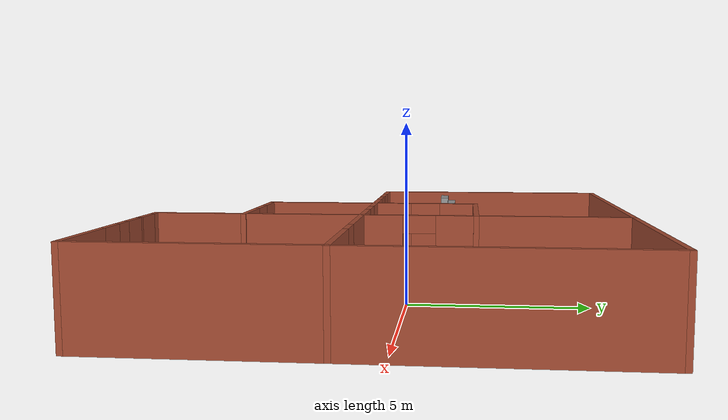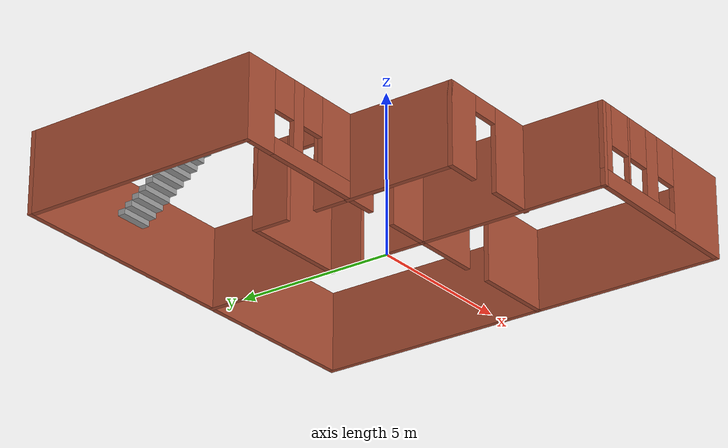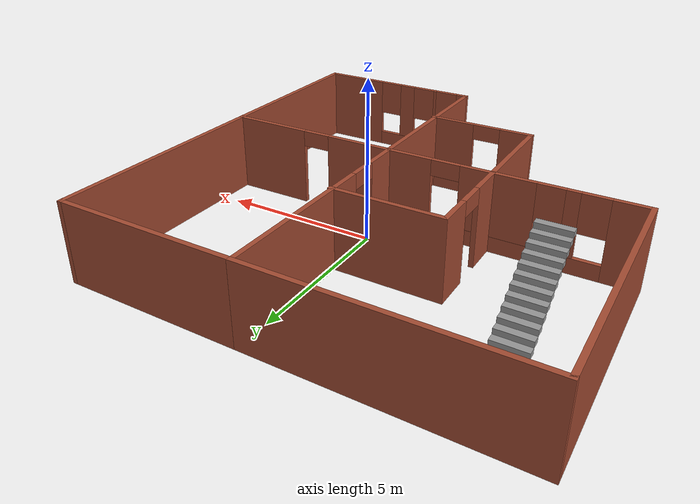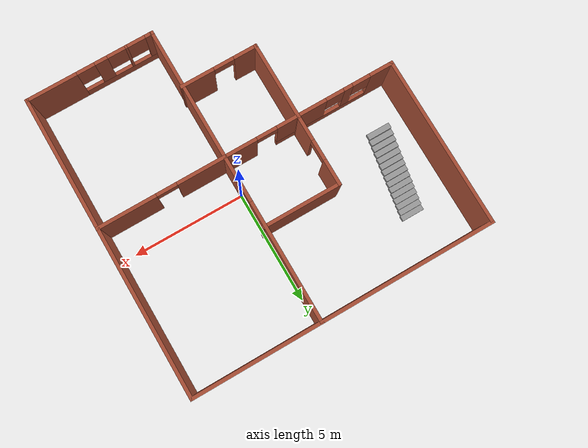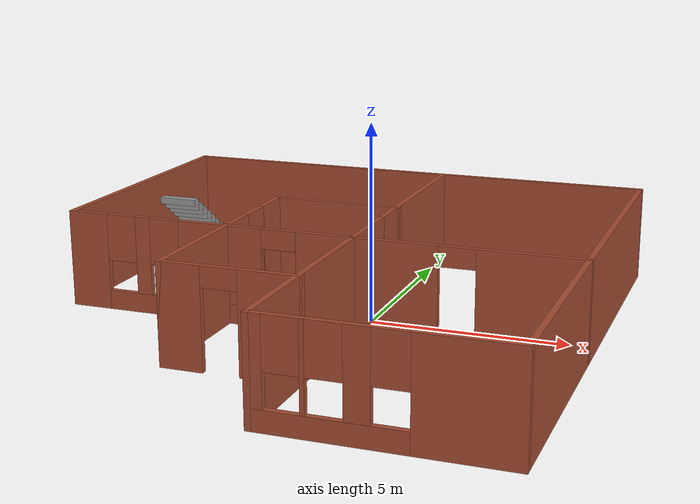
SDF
<?xml version='1.0'?>
<sdf version='1.6'>
  <model name='HouseOneLevel'>
    <pose frame=''>-1.02701 -0.481837 0 0 -0 0</pose>
    <link name='Stairs_1'>
      <visual name='Stairs_1_Visual_0'>
        <pose frame=''>-4.70333 4.64814 0.083333 0 -0 0</pose>
        <geometry>
          <box>
            <size>1 0.233333 0.166667</size>
          </box>
        </geometry>
        <material>
          <script>
            <uri>file://media/materials/scripts/gazebo.material</uri>
            <name>Gazebo/Grey</name>
          </script>
          <ambient>1 1 1 1</ambient>
        </material>
      </visual>
      <collision name='Stairs_1_Collision_0'>
        <geometry>
          <box>
            <size>1 0.233333 0.166667</size>
          </box>
        </geometry>
        <pose frame=''>-4.70333 4.64814 0.083333 0 -0 0</pose>
      </collision>
      <visual name='Stairs_1_Visual_1'>
        <pose frame=''>-4.70333 4.41481 0.25 0 -0 0</pose>
        <geometry>
          <box>
            <size>1 0.233333 0.166667</size>
          </box>
        </geometry>
        <material>
          <script>
            <uri>file://media/materials/scripts/gazebo.material</uri>
            <name>Gazebo/Grey</name>
          </script>
          <ambient>1 1 1 1</ambient>
        </material>
      </visual>
      <collision name='Stairs_1_Collision_1'>
        <geometry>
          <box>
            <size>1 0.233333 0.166667</size>
          </box>
        </geometry>
        <pose frame=''>-4.70333 4.41481 0.25 0 -0 0</pose>
      </collision>
      <visual name='Stairs_1_Visual_2'>
        <pose frame=''>-4.70333 4.18147 0.416667 0 -0 0</pose>
        <geometry>
          <box>
            <size>1 0.233333 0.166667</size>
          </box>
        </geometry>
        <material>
          <script>
            <uri>file://media/materials/scripts/gazebo.material</uri>
            <name>Gazebo/Grey</name>
          </script>
          <ambient>1 1 1 1</ambient>
        </material>
      </visual>
      <collision name='Stairs_1_Collision_2'>
        <geometry>
          <box>
            <size>1 0.233333 0.166667</size>
          </box>
        </geometry>
        <pose frame=''>-4.70333 4.18147 0.416667 0 -0 0</pose>
      </collision>
      <visual name='Stairs_1_Visual_3'>
        <pose frame=''>-4.70333 3.94814 0.583333 0 -0 0</pose>
        <geometry>
          <box>
            <size>1 0.233333 0.166667</size>
          </box>
        </geometry>
        <material>
          <script>
            <uri>file://media/materials/scripts/gazebo.material</uri>
            <name>Gazebo/Grey</name>
          </script>
          <ambient>1 1 1 1</ambient>
        </material>
      </visual>
      <collision name='Stairs_1_Collision_3'>
        <geometry>
          <box>
            <size>1 0.233333 0.166667</size>
          </box>
        </geometry>
        <pose frame=''>-4.70333 3.94814 0.583333 0 -0 0</pose>
      </collision>
      <visual name='Stairs_1_Visual_4'>
        <pose frame=''>-4.70333 3.71481 0.75 0 -0 0</pose>
        <geometry>
          <box>
            <size>1 0.233333 0.166667</size>
          </box>
        </geometry>
        <material>
          <script>
            <uri>file://media/materials/scripts/gazebo.material</uri>
            <name>Gazebo/Grey</name>
          </script>
          <ambient>1 1 1 1</ambient>
        </material>
      </visual>
      <collision name='Stairs_1_Collision_4'>
        <geometry>
          <box>
            <size>1 0.233333 0.166667</size>
          </box>
        </geometry>
        <pose frame=''>-4.70333 3.71481 0.75 0 -0 0</pose>
      </collision>
      <visual name='Stairs_1_Visual_5'>
        <pose frame=''>-4.70333 3.48148 0.916667 0 -0 0</pose>
        <geometry>
          <box>
            <size>1 0.233333 0.166667</size>
          </box>
        </geometry>
        <material>
          <script>
            <uri>file://media/materials/scripts/gazebo.material</uri>
            <name>Gazebo/Grey</name>
          </script>
          <ambient>1 1 1 1</ambient>
        </material>
      </visual>
      <collision name='Stairs_1_Collision_5'>
        <geometry>
          <box>
            <size>1 0.233333 0.166667</size>
          </box>
        </geometry>
        <pose frame=''>-4.70333 3.48148 0.916667 0 -0 0</pose>
      </collision>
      <visual name='Stairs_1_Visual_6'>
        <pose frame=''>-4.70333 3.24814 1.08333 0 -0 0</pose>
        <geometry>
          <box>
            <size>1 0.233333 0.166667</size>
          </box>
        </geometry>
        <material>
          <script>
            <uri>file://media/materials/scripts/gazebo.material</uri>
            <name>Gazebo/Grey</name>
          </script>
          <ambient>1 1 1 1</ambient>
        </material>
      </visual>
      <collision name='Stairs_1_Collision_6'>
        <geometry>
          <box>
            <size>1 0.233333 0.166667</size>
          </box>
        </geometry>
        <pose frame=''>-4.70333 3.24814 1.08333 0 -0 0</pose>
      </collision>
      <visual name='Stairs_1_Visual_7'>
        <pose frame=''>-4.70333 3.01481 1.25 0 -0 0</pose>
        <geometry>
          <box>
            <size>1 0.233333 0.166667</size>
          </box>
        </geometry>
        <material>
          <script>
            <uri>file://media/materials/scripts/gazebo.material</uri>
            <name>Gazebo/Grey</name>
          </script>
          <ambient>1 1 1 1</ambient>
        </material>
      </visual>
      <collision name='Stairs_1_Collision_7'>
        <geometry>
          <box>
            <size>1 0.233333 0.166667</size>
          </box>
        </geometry>
        <pose frame=''>-4.70333 3.01481 1.25 0 -0 0</pose>
      </collision>
      <visual name='Stairs_1_Visual_8'>
        <pose frame=''>-4.70333 2.78147 1.41667 0 -0 0</pose>
        <geometry>
          <box>
            <size>1 0.233333 0.166667</size>
          </box>
        </geometry>
        <material>
          <script>
            <uri>file://media/materials/scripts/gazebo.material</uri>
            <name>Gazebo/Grey</name>
          </script>
          <ambient>1 1 1 1</ambient>
        </material>
      </visual>
      <collision name='Stairs_1_Collision_8'>
        <geometry>
          <box>
            <size>1 0.233333 0.166667</size>
          </box>
        </geometry>
        <pose frame=''>-4.70333 2.78147 1.41667 0 -0 0</pose>
      </collision>
      <visual name='Stairs_1_Visual_9'>
        <pose frame=''>-4.70333 2.54814 1.58333 0 -0 0</pose>
        <geometry>
          <box>
            <size>1 0.233333 0.166667</size>
          </box>
        </geometry>
        <material>
          <script>
            <uri>file://media/materials/scripts/gazebo.material</uri>
            <name>Gazebo/Grey</name>
          </script>
          <ambient>1 1 1 1</ambient>
        </material>
      </visual>
      <collision name='Stairs_1_Collision_9'>
        <geometry>
          <box>
            <size>1 0.233333 0.166667</size>
          </box>
        </geometry>
        <pose frame=''>-4.70333 2.54814 1.58333 0 -0 0</pose>
      </collision>
      <visual name='Stairs_1_Visual_10'>
        <pose frame=''>-4.70333 2.31481 1.75 0 -0 0</pose>
        <geometry>
          <box>
            <size>1 0.233333 0.166667</size>
          </box>
        </geometry>
        <material>
          <script>
            <uri>file://media/materials/scripts/gazebo.material</uri>
            <name>Gazebo/Grey</name>
          </script>
          <ambient>1 1 1 1</ambient>
        </material>
      </visual>
      <collision name='Stairs_1_Collision_10'>
        <geometry>
          <box>
            <size>1 0.233333 0.166667</size>
          </box>
        </geometry>
        <pose frame=''>-4.70333 2.31481 1.75 0 -0 0</pose>
      </collision>
      <visual name='Stairs_1_Visual_11'>
        <pose frame=''>-4.70333 2.08148 1.91667 0 -0 0</pose>
        <geometry>
          <box>
            <size>1 0.233333 0.166667</size>
          </box>
        </geometry>
        <material>
          <script>
            <uri>file://media/materials/scripts/gazebo.material</uri>
            <name>Gazebo/Grey</name>
          </script>
          <ambient>1 1 1 1</ambient>
        </material>
      </visual>
      <collision name='Stairs_1_Collision_11'>
        <geometry>
          <box>
            <size>1 0.233333 0.166667</size>
          </box>
        </geometry>
        <pose frame=''>-4.70333 2.08148 1.91667 0 -0 0</pose>
      </collision>
      <visual name='Stairs_1_Visual_12'>
        <pose frame=''>-4.70333 1.84814 2.08333 0 -0 0</pose>
        <geometry>
          <box>
            <size>1 0.233333 0.166667</size>
          </box>
        </geometry>
        <material>
          <script>
            <uri>file://media/materials/scripts/gazebo.material</uri>
            <name>Gazebo/Grey</name>
          </script>
          <ambient>1 1 1 1</ambient>
        </material>
      </visual>
      <collision name='Stairs_1_Collision_12'>
        <geometry>
          <box>
            <size>1 0.233333 0.166667</size>
          </box>
        </geometry>
        <pose frame=''>-4.70333 1.84814 2.08333 0 -0 0</pose>
      </collision>
      <visual name='Stairs_1_Visual_13'>
        <pose frame=''>-4.70333 1.61481 2.25 0 -0 0</pose>
        <geometry>
          <box>
            <size>1 0.233333 0.166667</size>
          </box>
        </geometry>
        <material>
          <script>
            <uri>file://media/materials/scripts/gazebo.material</uri>
            <name>Gazebo/Grey</name>
          </script>
          <ambient>1 1 1 1</ambient>
        </material>
      </visual>
      <collision name='Stairs_1_Collision_13'>
        <geometry>
          <box>
            <size>1 0.233333 0.166667</size>
          </box>
        </geometry>
        <pose frame=''>-4.70333 1.61481 2.25 0 -0 0</pose>
      </collision>
      <visual name='Stairs_1_Visual_14'>
        <pose frame=''>-4.70333 1.38148 2.41667 0 -0 0</pose>
        <geometry>
          <box>
            <size>1 0.233333 0.166667</size>
          </box>
        </geometry>
        <material>
          <script>
            <uri>file://media/materials/scripts/gazebo.material</uri>
            <name>Gazebo/Grey</name>
          </script>
          <ambient>1 1 1 1</ambient>
        </material>
      </visual>
      <collision name='Stairs_1_Collision_14'>
        <geometry>
          <box>
            <size>1 0.233333 0.166667</size>
          </box>
        </geometry>
        <pose frame=''>-4.70333 1.38148 2.41667 0 -0 0</pose>
      </collision>
    </link>
    <link name='Wall_10'>
      <pose frame=''>1.00001 2.92484 0 0 -0 1.5708</pose>
      <visual name='Wall_10_Visual_0'>
        <pose frame=''>-3.14226 0 1.25 0 -0 0</pose>
        <geometry>
          <box>
            <size>1.21548 0.15 2.5</size>
          </box>
        </geometry>
        <material>
          <script>
            <uri>file://media/materials/scripts/gazebo.material</uri>
            <name>Gazebo/Bricks</name>
          </script>
          <ambient>1 1 1 1</ambient>
        </material>
      </visual>
      <collision name='Wall_10_Collision_0'>
        <geometry>
          <box>
            <size>1.21548 0.15 2.5</size>
          </box>
        </geometry>
        <pose frame=''>-3.14226 0 1.25 0 -0 0</pose>
      </collision>
      <visual name='Wall_10_Visual_1'>
        <pose frame=''>1.05774 0 1.25 0 -0 0</pose>
        <geometry>
          <box>
            <size>5.38452 0.15 2.5</size>
          </box>
        </geometry>
        <material>
          <script>
            <uri>file://media/materials/scripts/gazebo.material</uri>
            <name>Gazebo/Bricks</name>
          </script>
          <ambient>1 1 1 1</ambient>
        </material>
      </visual>
      <collision name='Wall_10_Collision_1'>
        <geometry>
          <box>
            <size>5.38452 0.15 2.5</size>
          </box>
        </geometry>
        <pose frame=''>1.05774 0 1.25 0 -0 0</pose>
      </collision>
      <visual name='Wall_10_Visual_2'>
        <pose frame=''>-2.08452 0 2.25 0 -0 0</pose>
        <geometry>
          <box>
            <size>0.9 0.15 0.5</size>
          </box>
        </geometry>
        <material>
          <script>
            <uri>file://media/materials/scripts/gazebo.material</uri>
            <name>Gazebo/Bricks</name>
          </script>
          <ambient>1 1 1 1</ambient>
        </material>
      </visual>
      <collision name='Wall_10_Collision_2'>
        <geometry>
          <box>
            <size>0.9 0.15 0.5</size>
          </box>
        </geometry>
        <pose frame=''>-2.08452 0 2.25 0 -0 0</pose>
      </collision>
    </link>
    <link name='Wall_2'>
      <collision name='Wall_2_Collision'>
        <geometry>
          <box>
            <size>7.75 0.15 2.5</size>
          </box>
        </geometry>
        <pose frame=''>0 0 1.25 0 -0 0</pose>
      </collision>
      <visual name='Wall_2_Visual'>
        <pose frame=''>0 0 1.25 0 -0 0</pose>
        <geometry>
          <box>
            <size>7.75 0.15 2.5</size>
          </box>
        </geometry>
        <material>
          <script>
            <uri>file://media/materials/scripts/gazebo.material</uri>
            <name>Gazebo/Bricks</name>
          </script>
          <ambient>1 1 1 1</ambient>
        </material>
      </visual>
      <pose frame=''>-2.79999 6.59984 0 0 -0 0</pose>
    </link>
    <link name='Wall_20'>
      <collision name='Wall_20_Collision'>
        <geometry>
          <box>
            <size>7.5 0.15 2.5</size>
          </box>
        </geometry>
        <pose frame=''>0 0 1.25 0 -0 0</pose>
      </collision>
      <visual name='Wall_20_Visual'>
        <pose frame=''>0 0 1.25 0 -0 0</pose>
        <geometry>
          <box>
            <size>7.5 0.15 2.5</size>
          </box>
        </geometry>
        <material>
          <script>
            <uri>file://media/materials/scripts/gazebo.material</uri>
            <name>Gazebo/Bricks</name>
          </script>
          <ambient>1 1 1 1</ambient>
        </material>
      </visual>
      <pose frame=''>-6.59999 2.92484 0 0 0 -1.5708</pose>
    </link>
    <link name='Wall_21'>
      <pose frame=''>-2.79999 -0.750163 0 0 -0 0</pose>
      <visual name='Wall_21_Visual_0'>
        <pose frame=''>-3.33204 0 1.25 0 -0 0</pose>
        <geometry>
          <box>
            <size>1.08592 0.15 2.5</size>
          </box>
        </geometry>
        <material>
          <script>
            <uri>file://media/materials/scripts/gazebo.material</uri>
            <name>Gazebo/Bricks</name>
          </script>
          <ambient>1 1 1 1</ambient>
        </material>
      </visual>
      <collision name='Wall_21_Collision_0'>
        <geometry>
          <box>
            <size>1.08592 0.15 2.5</size>
          </box>
        </geometry>
        <pose frame=''>-3.33204 0 1.25 0 -0 0</pose>
      </collision>
      <visual name='Wall_21_Visual_1'>
        <pose frame=''>3.11913 0 1.25 0 -0 0</pose>
        <geometry>
          <box>
            <size>1.51174 0.15 2.5</size>
          </box>
        </geometry>
        <material>
          <script>
            <uri>file://media/materials/scripts/gazebo.material</uri>
            <name>Gazebo/Bricks</name>
          </script>
          <ambient>1 1 1 1</ambient>
        </material>
      </visual>
      <collision name='Wall_21_Collision_1'>
        <geometry>
          <box>
            <size>1.51174 0.15 2.5</size>
          </box>
        </geometry>
        <pose frame=''>3.11913 0 1.25 0 -0 0</pose>
      </collision>
      <visual name='Wall_21_Visual_2'>
        <pose frame=''>-0.662911 0 0.25 0 -0 0</pose>
        <geometry>
          <box>
            <size>4.25234 0.15 0.5</size>
          </box>
        </geometry>
        <material>
          <script>
            <uri>file://media/materials/scripts/gazebo.material</uri>
            <name>Gazebo/Bricks</name>
          </script>
          <ambient>1 1 1 1</ambient>
        </material>
      </visual>
      <collision name='Wall_21_Collision_2'>
        <geometry>
          <box>
            <size>4.25234 0.15 0.5</size>
          </box>
        </geometry>
        <pose frame=''>-0.662911 0 0.25 0 -0 0</pose>
      </collision>
      <visual name='Wall_21_Visual_3'>
        <pose frame=''>-1.78766 0 1.5 0 -0 0</pose>
        <geometry>
          <box>
            <size>0.40284 0.15 2</size>
          </box>
        </geometry>
        <material>
          <script>
            <uri>file://media/materials/scripts/gazebo.material</uri>
            <name>Gazebo/Bricks</name>
          </script>
          <ambient>1 1 1 1</ambient>
        </material>
      </visual>
      <collision name='Wall_21_Collision_3'>
        <geometry>
          <box>
            <size>0.40284 0.15 2</size>
          </box>
        </geometry>
        <pose frame=''>-1.78766 0 1.5 0 -0 0</pose>
      </collision>
      <visual name='Wall_21_Visual_4'>
        <pose frame=''>0.338509 0 1.5 0 -0 0</pose>
        <geometry>
          <box>
            <size>2.2495 0.15 2</size>
          </box>
        </geometry>
        <material>
          <script>
            <uri>file://media/materials/scripts/gazebo.material</uri>
            <name>Gazebo/Bricks</name>
          </script>
          <ambient>1 1 1 1</ambient>
        </material>
      </visual>
      <collision name='Wall_21_Collision_4'>
        <geometry>
          <box>
            <size>2.2495 0.15 2</size>
          </box>
        </geometry>
        <pose frame=''>0.338509 0 1.5 0 -0 0</pose>
      </collision>
      <visual name='Wall_21_Visual_5'>
        <pose frame=''>-2.38908 0 1.9 0 -0 0</pose>
        <geometry>
          <box>
            <size>0.8 0.15 1.2</size>
          </box>
        </geometry>
        <material>
          <script>
            <uri>file://media/materials/scripts/gazebo.material</uri>
            <name>Gazebo/Bricks</name>
          </script>
          <ambient>1 1 1 1</ambient>
        </material>
      </visual>
      <collision name='Wall_21_Collision_5'>
        <geometry>
          <box>
            <size>0.8 0.15 1.2</size>
          </box>
        </geometry>
        <pose frame=''>-2.38908 0 1.9 0 -0 0</pose>
      </collision>
      <visual name='Wall_21_Visual_6'>
        <pose frame=''>-1.18624 0 1.9 0 -0 0</pose>
        <geometry>
          <box>
            <size>0.8 0.15 1.2</size>
          </box>
        </geometry>
        <material>
          <script>
            <uri>file://media/materials/scripts/gazebo.material</uri>
            <name>Gazebo/Bricks</name>
          </script>
          <ambient>1 1 1 1</ambient>
        </material>
      </visual>
      <collision name='Wall_21_Collision_6'>
        <geometry>
          <box>
            <size>0.8 0.15 1.2</size>
          </box>
        </geometry>
        <pose frame=''>-1.18624 0 1.9 0 -0 0</pose>
      </collision>
      <visual name='Wall_21_Visual_7'>
        <pose frame=''>1.91326 0 2.25 0 -0 0</pose>
        <geometry>
          <box>
            <size>0.9 0.15 0.5</size>
          </box>
        </geometry>
        <material>
          <script>
            <uri>file://media/materials/scripts/gazebo.material</uri>
            <name>Gazebo/Bricks</name>
          </script>
          <ambient>1 1 1 1</ambient>
        </material>
      </visual>
      <collision name='Wall_21_Collision_7'>
        <geometry>
          <box>
            <size>0.9 0.15 0.5</size>
          </box>
        </geometry>
        <pose frame=''>1.91326 0 2.25 0 -0 0</pose>
      </collision>
    </link>
    <link name='Wall_22'>
      <pose frame=''>3.79999 -0.750055 0 0 -0 3.8e-05</pose>
      <visual name='Wall_22_Visual_0'>
        <pose frame=''>-1.77377 0 1.25 0 -0 0</pose>
        <geometry>
          <box>
            <size>2.20247 0.15 2.5</size>
          </box>
        </geometry>
        <material>
          <script>
            <uri>file://media/materials/scripts/gazebo.material</uri>
            <name>Gazebo/Bricks</name>
          </script>
          <ambient>1 1 1 1</ambient>
        </material>
      </visual>
      <collision name='Wall_22_Collision_0'>
        <geometry>
          <box>
            <size>2.20247 0.15 2.5</size>
          </box>
        </geometry>
        <pose frame=''>-1.77377 0 1.25 0 -0 0</pose>
      </collision>
      <visual name='Wall_22_Visual_1'>
        <pose frame=''>1.55123 0 1.25 0 -0 0</pose>
        <geometry>
          <box>
            <size>2.64753 0.15 2.5</size>
          </box>
        </geometry>
        <material>
          <script>
            <uri>file://media/materials/scripts/gazebo.material</uri>
            <name>Gazebo/Bricks</name>
          </script>
          <ambient>1 1 1 1</ambient>
        </material>
      </visual>
      <collision name='Wall_22_Collision_1'>
        <geometry>
          <box>
            <size>2.64753 0.15 2.5</size>
          </box>
        </geometry>
        <pose frame=''>1.55123 0 1.25 0 -0 0</pose>
      </collision>
      <visual name='Wall_22_Visual_2'>
        <pose frame=''>-0.222531 0 2.25 0 -0 0</pose>
        <geometry>
          <box>
            <size>0.9 0.15 0.5</size>
          </box>
        </geometry>
        <material>
          <script>
            <uri>file://media/materials/scripts/gazebo.material</uri>
            <name>Gazebo/Bricks</name>
          </script>
          <ambient>1 1 1 1</ambient>
        </material>
      </visual>
      <collision name='Wall_22_Collision_2'>
        <geometry>
          <box>
            <size>0.9 0.15 0.5</size>
          </box>
        </geometry>
        <pose frame=''>-0.222531 0 2.25 0 -0 0</pose>
      </collision>
    </link>
    <link name='Wall_25'>
      <pose frame=''>-2.29774 0.84078 0 0 -0 1.5708</pose>
      <visual name='Wall_25_Visual_0'>
        <pose frame=''>-1.03763 0 1.25 0 -0 0</pose>
        <geometry>
          <box>
            <size>1.17475 0.15 2.5</size>
          </box>
        </geometry>
        <material>
          <script>
            <uri>file://media/materials/scripts/gazebo.material</uri>
            <name>Gazebo/Bricks</name>
          </script>
          <ambient>1 1 1 1</ambient>
        </material>
      </visual>
      <collision name='Wall_25_Collision_0'>
        <geometry>
          <box>
            <size>1.17475 0.15 2.5</size>
          </box>
        </geometry>
        <pose frame=''>-1.03763 0 1.25 0 -0 0</pose>
      </collision>
      <visual name='Wall_25_Visual_1'>
        <pose frame=''>1.03737 0 1.25 0 -0 0</pose>
        <geometry>
          <box>
            <size>1.17525 0.15 2.5</size>
          </box>
        </geometry>
        <material>
          <script>
            <uri>file://media/materials/scripts/gazebo.material</uri>
            <name>Gazebo/Bricks</name>
          </script>
          <ambient>1 1 1 1</ambient>
        </material>
      </visual>
      <collision name='Wall_25_Collision_1'>
        <geometry>
          <box>
            <size>1.17525 0.15 2.5</size>
          </box>
        </geometry>
        <pose frame=''>1.03737 0 1.25 0 -0 0</pose>
      </collision>
      <visual name='Wall_25_Visual_2'>
        <pose frame=''>-0.000249 0 2.25 0 -0 0</pose>
        <geometry>
          <box>
            <size>0.9 0.15 0.5</size>
          </box>
        </geometry>
        <material>
          <script>
            <uri>file://media/materials/scripts/gazebo.material</uri>
            <name>Gazebo/Bricks</name>
          </script>
          <ambient>1 1 1 1</ambient>
        </material>
      </visual>
      <collision name='Wall_25_Collision_2'>
        <geometry>
          <box>
            <size>0.9 0.15 0.5</size>
          </box>
        </geometry>
        <pose frame=''>-0.000249 0 2.25 0 -0 0</pose>
      </collision>
    </link>
    <link name='Wall_28'>
      <collision name='Wall_28_Collision'>
        <geometry>
          <box>
            <size>3.5 0.15 2.5</size>
          </box>
        </geometry>
        <pose frame=''>0 0 1.25 0 -0 0</pose>
      </collision>
      <visual name='Wall_28_Visual'>
        <pose frame=''>0 0 1.25 0 -0 0</pose>
        <geometry>
          <box>
            <size>3.5 0.15 2.5</size>
          </box>
        </geometry>
        <material>
          <script>
            <uri>file://media/materials/scripts/gazebo.material</uri>
            <name>Gazebo/Bricks</name>
          </script>
          <ambient>1 1 1 1</ambient>
        </material>
      </visual>
      <pose frame=''>-0.622745 2.39078 0 0 -0 0</pose>
    </link>
    <link name='Wall_32'>
      <collision name='Wall_32_Collision'>
        <geometry>
          <box>
            <size>3.5 0.15 2.5</size>
          </box>
        </geometry>
        <pose frame=''>0 0 1.25 0 -0 0</pose>
      </collision>
      <visual name='Wall_32_Visual'>
        <pose frame=''>0 0 1.25 0 -0 0</pose>
        <geometry>
          <box>
            <size>3.5 0.15 2.5</size>
          </box>
        </geometry>
        <material>
          <script>
            <uri>file://media/materials/scripts/gazebo.material</uri>
            <name>Gazebo/Bricks</name>
          </script>
          <ambient>1 1 1 1</ambient>
        </material>
      </visual>
      <pose frame=''>-2.29774 -2.38422 0 0 0 -1.5708</pose>
    </link>
    <link name='Wall_35'>
      <pose frame=''>-0.622745 -4.05922 0 0 -0 0</pose>
      <visual name='Wall_35_Visual_0'>
        <pose frame=''>-1.20889 0 1.25 0 -0 0</pose>
        <geometry>
          <box>
            <size>1.08223 0.15 2.5</size>
          </box>
        </geometry>
        <material>
          <script>
            <uri>file://media/materials/scripts/gazebo.material</uri>
            <name>Gazebo/Bricks</name>
          </script>
          <ambient>1 1 1 1</ambient>
        </material>
      </visual>
      <collision name='Wall_35_Collision_0'>
        <geometry>
          <box>
            <size>1.08223 0.15 2.5</size>
          </box>
        </geometry>
        <pose frame=''>-1.20889 0 1.25 0 -0 0</pose>
      </collision>
      <visual name='Wall_35_Visual_1'>
        <pose frame=''>0.991114 0 1.25 0 -0 0</pose>
        <geometry>
          <box>
            <size>1.51777 0.15 2.5</size>
          </box>
        </geometry>
        <material>
          <script>
            <uri>file://media/materials/scripts/gazebo.material</uri>
            <name>Gazebo/Bricks</name>
          </script>
          <ambient>1 1 1 1</ambient>
        </material>
      </visual>
      <collision name='Wall_35_Collision_1'>
        <geometry>
          <box>
            <size>1.51777 0.15 2.5</size>
          </box>
        </geometry>
        <pose frame=''>0.991114 0 1.25 0 -0 0</pose>
      </collision>
      <visual name='Wall_35_Visual_2'>
        <pose frame=''>-0.217772 0 2.25 0 -0 0</pose>
        <geometry>
          <box>
            <size>0.9 0.15 0.5</size>
          </box>
        </geometry>
        <material>
          <script>
            <uri>file://media/materials/scripts/gazebo.material</uri>
            <name>Gazebo/Bricks</name>
          </script>
          <ambient>1 1 1 1</ambient>
        </material>
      </visual>
      <collision name='Wall_35_Collision_2'>
        <geometry>
          <box>
            <size>0.9 0.15 0.5</size>
          </box>
        </geometry>
        <pose frame=''>-0.217772 0 2.25 0 -0 0</pose>
      </collision>
    </link>
    <link name='Wall_4'>
      <collision name='Wall_4_Collision'>
        <geometry>
          <box>
            <size>5.75 0.15 2.5</size>
          </box>
        </geometry>
        <pose frame=''>0 0 1.25 0 -0 0</pose>
      </collision>
      <visual name='Wall_4_Visual'>
        <pose frame=''>0 0 1.25 0 -0 0</pose>
        <geometry>
          <box>
            <size>5.75 0.15 2.5</size>
          </box>
        </geometry>
        <material>
          <script>
            <uri>file://media/materials/scripts/gazebo.material</uri>
            <name>Gazebo/Bricks</name>
          </script>
          <ambient>1 1 1 1</ambient>
        </material>
      </visual>
      <pose frame=''>3.79999 6.59994 0 0 -0 3.8e-05</pose>
    </link>
    <link name='Wall_5'>
      <collision name='Wall_5_Collision'>
        <geometry>
          <box>
            <size>7.5 0.15 2.5</size>
          </box>
        </geometry>
        <pose frame=''>0 0 1.25 0 -0 0</pose>
      </collision>
      <visual name='Wall_5_Visual'>
        <pose frame=''>0 0 1.25 0 -0 0</pose>
        <geometry>
          <box>
            <size>7.5 0.15 2.5</size>
          </box>
        </geometry>
        <material>
          <script>
            <uri>file://media/materials/scripts/gazebo.material</uri>
            <name>Gazebo/Bricks</name>
          </script>
          <ambient>1 1 1 1</ambient>
        </material>
      </visual>
      <pose frame=''>6.59996 2.92505 0 0 0 -1.5708</pose>
    </link>
    <link name='Wall_6'>
      <collision name='Wall_6_Collision'>
        <geometry>
          <box>
            <size>6 0.15 2.5</size>
          </box>
        </geometry>
        <pose frame=''>0 0 1.25 0 -0 0</pose>
      </collision>
      <visual name='Wall_6_Visual'>
        <pose frame=''>0 0 1.25 0 -0 0</pose>
        <geometry>
          <box>
            <size>6 0.15 2.5</size>
          </box>
        </geometry>
        <material>
          <script>
            <uri>file://media/materials/scripts/gazebo.material</uri>
            <name>Gazebo/Bricks</name>
          </script>
          <ambient>1 1 1 1</ambient>
        </material>
      </visual>
      <pose frame=''>6.59996 -3.67495 0 0 0 -1.5708</pose>
    </link>
    <link name='Wall_7'>
      <pose frame=''>3.79996 -6.59995 0 0 -0 3.14159</pose>
      <visual name='Wall_7_Visual_0'>
        <pose frame=''>-1.73441 0 1.25 0 -0 0</pose>
        <geometry>
          <box>
            <size>2.28118 0.15 2.5</size>
          </box>
        </geometry>
        <material>
          <script>
            <uri>file://media/materials/scripts/gazebo.material</uri>
            <name>Gazebo/Bricks</name>
          </script>
          <ambient>1 1 1 1</ambient>
        </material>
      </visual>
      <collision name='Wall_7_Collision_0'>
        <geometry>
          <box>
            <size>2.28118 0.15 2.5</size>
          </box>
        </geometry>
        <pose frame=''>-1.73441 0 1.25 0 -0 0</pose>
      </collision>
      <visual name='Wall_7_Visual_1'>
        <pose frame=''>1.14059 0 0.25 0 -0 0</pose>
        <geometry>
          <box>
            <size>3.46882 0.15 0.5</size>
          </box>
        </geometry>
        <material>
          <script>
            <uri>file://media/materials/scripts/gazebo.material</uri>
            <name>Gazebo/Bricks</name>
          </script>
          <ambient>1 1 1 1</ambient>
        </material>
      </visual>
      <collision name='Wall_7_Collision_1'>
        <geometry>
          <box>
            <size>3.46882 0.15 0.5</size>
          </box>
        </geometry>
        <pose frame=''>1.14059 0 0.25 0 -0 0</pose>
      </collision>
      <visual name='Wall_7_Visual_2'>
        <pose frame=''>0.488535 0 1.5 0 -0 0</pose>
        <geometry>
          <box>
            <size>0.564706 0.15 2</size>
          </box>
        </geometry>
        <material>
          <script>
            <uri>file://media/materials/scripts/gazebo.material</uri>
            <name>Gazebo/Bricks</name>
          </script>
          <ambient>1 1 1 1</ambient>
        </material>
      </visual>
      <collision name='Wall_7_Collision_2'>
        <geometry>
          <box>
            <size>0.564706 0.15 2</size>
          </box>
        </geometry>
        <pose frame=''>0.488535 0 1.5 0 -0 0</pose>
      </collision>
      <visual name='Wall_7_Visual_3'>
        <pose frame=''>1.62193 0 1.5 0 -0 0</pose>
        <geometry>
          <box>
            <size>0.102094 0.15 2</size>
          </box>
        </geometry>
        <material>
          <script>
            <uri>file://media/materials/scripts/gazebo.material</uri>
            <name>Gazebo/Bricks</name>
          </script>
          <ambient>1 1 1 1</ambient>
        </material>
      </visual>
      <collision name='Wall_7_Collision_3'>
        <geometry>
          <box>
            <size>0.102094 0.15 2</size>
          </box>
        </geometry>
        <pose frame=''>1.62193 0 1.5 0 -0 0</pose>
      </collision>
      <visual name='Wall_7_Visual_4'>
        <pose frame=''>2.67399 0 1.5 0 -0 0</pose>
        <geometry>
          <box>
            <size>0.402019 0.15 2</size>
          </box>
        </geometry>
        <material>
          <script>
            <uri>file://media/materials/scripts/gazebo.material</uri>
            <name>Gazebo/Bricks</name>
          </script>
          <ambient>1 1 1 1</ambient>
        </material>
      </visual>
      <collision name='Wall_7_Collision_4'>
        <geometry>
          <box>
            <size>0.402019 0.15 2</size>
          </box>
        </geometry>
        <pose frame=''>2.67399 0 1.5 0 -0 0</pose>
      </collision>
      <visual name='Wall_7_Visual_5'>
        <pose frame=''>-0.193818 0 1.9 0 -0 0</pose>
        <geometry>
          <box>
            <size>0.8 0.15 1.2</size>
          </box>
        </geometry>
        <material>
          <script>
            <uri>file://media/materials/scripts/gazebo.material</uri>
            <name>Gazebo/Bricks</name>
          </script>
          <ambient>1 1 1 1</ambient>
        </material>
      </visual>
      <collision name='Wall_7_Collision_5'>
        <geometry>
          <box>
            <size>0.8 0.15 1.2</size>
          </box>
        </geometry>
        <pose frame=''>-0.193818 0 1.9 0 -0 0</pose>
      </collision>
      <visual name='Wall_7_Visual_6'>
        <pose frame=''>1.17089 0 1.9 0 -0 0</pose>
        <geometry>
          <box>
            <size>0.8 0.15 1.2</size>
          </box>
        </geometry>
        <material>
          <script>
            <uri>file://media/materials/scripts/gazebo.material</uri>
            <name>Gazebo/Bricks</name>
          </script>
          <ambient>1 1 1 1</ambient>
        </material>
      </visual>
      <collision name='Wall_7_Collision_6'>
        <geometry>
          <box>
            <size>0.8 0.15 1.2</size>
          </box>
        </geometry>
        <pose frame=''>1.17089 0 1.9 0 -0 0</pose>
      </collision>
      <visual name='Wall_7_Visual_7'>
        <pose frame=''>2.07298 0 1.9 0 -0 0</pose>
        <geometry>
          <box>
            <size>0.8 0.15 1.2</size>
          </box>
        </geometry>
        <material>
          <script>
            <uri>file://media/materials/scripts/gazebo.material</uri>
            <name>Gazebo/Bricks</name>
          </script>
          <ambient>1 1 1 1</ambient>
        </material>
      </visual>
      <collision name='Wall_7_Collision_7'>
        <geometry>
          <box>
            <size>0.8 0.15 1.2</size>
          </box>
        </geometry>
        <pose frame=''>2.07298 0 1.9 0 -0 0</pose>
      </collision>
    </link>
    <link name='Wall_8'>
      <collision name='Wall_8_Collision'>
        <geometry>
          <box>
            <size>6 0.15 2.5</size>
          </box>
        </geometry>
        <pose frame=''>0 0 1.25 0 -0 0</pose>
      </collision>
      <visual name='Wall_8_Visual'>
        <pose frame=''>0 0 1.25 0 -0 0</pose>
        <geometry>
          <box>
            <size>6 0.15 2.5</size>
          </box>
        </geometry>
        <material>
          <script>
            <uri>file://media/materials/scripts/gazebo.material</uri>
            <name>Gazebo/Bricks</name>
          </script>
          <ambient>1 1 1 1</ambient>
        </material>
      </visual>
      <pose frame=''>0.999986 -3.67505 0 0 -0 1.57079</pose>
    </link>
    <static>1</static>
  </model>
</sdf>
